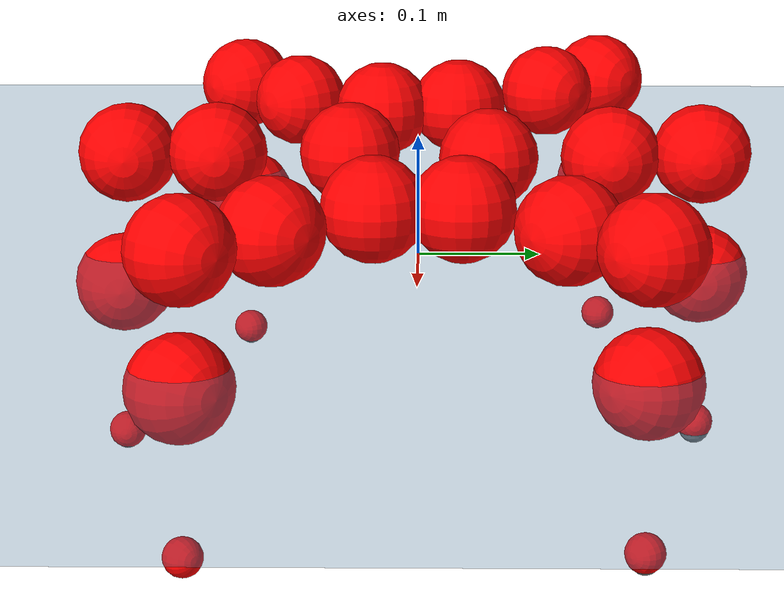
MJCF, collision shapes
<mujoco model="Golem">
  <compiler angle="radian" assetdir="assets" balanceinertia="true" inertiafromgeom="false"/>

  <option timestep="0.005" density="1.2" viscosity="2e-05"/>

  <size nkey="1"/>

  <visual>
    <quality shadowsize="8192"/>
    <map shadowclip="0.5"/>
  </visual>

  <default>
    <default class="/">
      <joint armature="0.01" damping="0.01" frictionloss="0.01"/>
      <geom contype="0" conaffinity="0" group="1" solref="-1000 -80"/>
      <site size="0.01 0.005 0.005" group="5"/>
      <general forcelimited="true" biastype="affine" gainprm="25" biasprm="0 -25 -0.5"/>
      <default class="visual">
        <geom type="mesh" group="2"/>
      </default>
      <default class="collision">
        <geom group="3"/>
      </default>
      <default class="foot">
        <geom size="0.01 0 0" condim="6" group="4" priority="1" solimp="0.015 1 0.01"/>
      </default>
      <default class="reward_collision_sphere">
        <geom group="5" rgba="1 0 0 1"/>
      </default>
    </default>
  </default>

  <asset>
    <texture type="skybox" colorspace="auto" name="//unnamed_texture_0" builtin="gradient" rgb1="0.95 0.95 0.95" rgb2="0.95 0.95 0.95" width="100" height="600"/>
    <texture type="2d" colorspace="auto" name="texplane" builtin="checker" rgb1="0.345 0.575 0.748" rgb2="0.345 0.575 0.748" markrgb="1 1 1" width="512" height="512"/>
    <material name="MatPlane" class="/" texture="texplane" texuniform="true" texrepeat="2 2" specular="0.9"/>
    <mesh name="body" class="/" file="body.stl" scale="0.001 0.001 0.001"/>
    <mesh name="coxa" class="/" file="coxa.stl" scale="0.001 0.001 0.001"/>
    <mesh name="femur" class="/" file="femur.stl" scale="0.001 0.001 0.001"/>
    <mesh name="tibia" class="/" file="tibia.stl" scale="0.001 0.001 0.001"/>
    <mesh name="tarsus" class="/" file="tarsus.stl" scale="0.001 0.001 0.001"/>
  </asset>

  <worldbody>
    <geom name="floor" class="/" size="100 100 0.125" type="plane" group="0" material="MatPlane"/>
    <light name="toplight_shadow" class="/" pos="0 0 5" dir="0.0990148 0.0990148 -0.990148" type="directional" ambient="0.04 0.04 0.04" diffuse="0.55 0.55 0.55" specular="0.12 0.12 0.12"/>
    <light name="toplight_fill" class="/" pos="0 0 5" dir="0.0990148 0.0990148 -0.990148" type="directional" castshadow="false" ambient="0.04 0.04 0.04" diffuse="0.3 0.3 0.3" specular="0.08 0.08 0.08"/>
    <body name="trunk" pos="-0.000511346 0.0017566 0.00577776" quat="1 2.19384e-05 3.979e-05 1.42733e-05">
      <inertial pos="0.000296485 7.16837e-05 -0.00557654" quat="0.999948 0.0101801 -0.0001648 -0.000522424" mass="3.98543" diaginertia="0.0287549 0.0016907 0.0229673"/>
      <joint name="//unnamed_joint_0" type="free"/>
      <geom name="//unnamed_geom_1" class="/" pos="0 0 0.0750412" quat="1 0 0 0" type="mesh" rgba="0.9 0.9 0.9 1" mesh="body"/>
      <site name="imu" class="/" pos="0.166598 -0.0102652 0.12734" size="0.0102827"/>
      <camera name="track" class="/" pos="0 -1.40284 0" quat="0.707107 0.707107 0 0" mode="trackcom"/>
      <camera name="ego_camera" class="/" pos="0.157412 0 0.117252" quat="-0.5 -0.5 0.5 0.5"/>
      <body name="coxa_RR" pos="-0.21211 -0.060564 0.0778275" quat="0.382871 0.000705925 -0.000445436 -0.923802">
        <inertial pos="0.000553143 0.00551615 0.00228396" quat="0.999933 -0.000341349 -0.0020878 0.0114162" mass="0.234557" diaginertia="0.0289349 0.00175338 0.0246421"/>
        <joint name="coxa_joint_RR" class="/" pos="0 0 0" axis="0.0310542 -0.0184537 -0.999347" range="-3.14895 3.16916" armature="0.0105054" damping="0.0164189" frictionloss="0.0114372"/>
        <geom name="//unnamed_geom_2" class="/" type="mesh" rgba="0.2 0.2 0.2 1" mesh="coxa"/>
        <geom name="//unnamed_geom_3" class="reward_collision_sphere" size="0.0411307" pos="-0.036326 0 0"/>
        <body name="femur_RR" pos="0.0689365 0.00306348 -0.0072594" quat="0.500224 -0.49888 0.500378 0.500517">
          <inertial pos="-0.00253461 -0.000508682 0.000180104" quat="0.999999 -0.00142525 -0.0007879 -0.000437195" mass="0.211476" diaginertia="0.0251791 0.00165728 0.0217627"/>
          <joint name="femur_joint_RR" class="/" pos="0 0 0" axis="-0.00122215 -0.00128822 -0.999998" range="-3.09616 3.23246" armature="0.0110385" damping="0.031709" frictionloss="0.0093123"/>
          <geom name="//unnamed_geom_4" class="/" type="mesh" rgba="0.9 0.9 0.9 1" mesh="femur"/>
          <geom name="//unnamed_geom_5" class="reward_collision_sphere" size="0.0411307"/>
          <body name="tibia_RR" pos="-0.00494246 -0.0774456 -0.00147921" quat="1.91865e-05 1 1.74078e-05 -2.00716e-05">
            <inertial pos="0.0038414 0.00111046 -0.000288382" quat="0.999928 0.00121889 -0.0114781 0.00313776" mass="0.217197" diaginertia="0.0261036 0.00160858 0.0208953"/>
            <joint name="tibia_joint_RR" class="/" pos="0 0 0" axis="-0.000100832 -5.22207e-05 1" range="-3.03284 3.11595" armature="0.0113149" damping="0.0147425" frictionloss="0.0113547"/>
            <geom name="//unnamed_geom_6" class="/" type="mesh" rgba="0.2 0.2 0.2 1" mesh="tibia"/>
            <geom name="//unnamed_geom_7" class="reward_collision_sphere" size="0.0411307"/>
            <body name="tarsus_RR" pos="0.107122 -0.00257391 -0.00212836" quat="1 0.000288149 -0.000871983 -0.00037904">
              <inertial pos="0.0771523 -0.00434505 0.00208097" quat="0.502908 0.497321 0.496185 0.503544" mass="0.22397" diaginertia="0.0266255 0.00174843 0.0226041"/>
              <joint name="tarsus_joint_RR" class="/" pos="0 0 0" axis="-0.00617206 -0.00284447 0.999977" stiffness="0.0314532" range="-3.08919 3.1335" armature="0.00903162" damping="0.0187924" frictionloss="0.00886524"/>
              <geom name="//unnamed_geom_8" class="/" type="mesh" rgba="0.9 0.9 0.9 1" mesh="tarsus"/>
              <geom name="foot_1" class="foot" size="0.0108004" pos="0.135617 0 0" quat="0 -0.707107 0 0.707107"/>
              <geom name="//unnamed_geom_10" class="reward_collision_sphere" size="0.0411307"/>
              <geom name="//unnamed_geom_11" class="reward_collision_sphere" size="0.015424" pos="0.130168 0 0"/>
              <site name="foot_1" class="foot" pos="0.135617 0 0" quat="0 -0.707107 0 0.707107" size="0.0102827"/>
            </body>
          </body>
        </body>
      </body>
      <body name="coxa_RM" pos="-6.58387e-05 -0.0942757 0.0808815" quat="0.708728 -0.000703628 -0.00198826 -0.705479">
        <inertial pos="0.00397025 -0.000397857 -0.000506923" quat="0.999934 -0.0100573 -0.00123697 0.00550052" mass="0.219847" diaginertia="0.0275068 0.00173338 0.0213315"/>
        <joint name="coxa_joint_RM" class="/" pos="0 0 0" axis="0.00185827 -0.00443567 -0.999988" range="-3.01123 3.14769" armature="0.00931526" damping="0.00826279" frictionloss="0.0101184"/>
        <geom name="//unnamed_geom_12" class="/" type="mesh" rgba="0.2 0.2 0.2 1" mesh="coxa"/>
        <geom name="//unnamed_geom_13" class="reward_collision_sphere" size="0.0411307" pos="-0.036326 0 0"/>
        <body name="femur_RM" pos="0.0726361 -0.00163338 -0.000548558" quat="0.499855 -0.501081 0.498321 0.500739">
          <inertial pos="0.000361541 -0.00118185 0.000963486" quat="0.999796 0.0197858 -0.00396904 -0.000183527" mass="0.207754" diaginertia="0.0250703 0.00168947 0.0208365"/>
          <joint name="femur_joint_RM" class="/" pos="0 0 0" axis="-0.00526625 0.00490269 -0.999974" stiffness="0.0272492" range="-3.15167 3.14461" armature="0.0114515" damping="0.0141976" frictionloss="0.00971225"/>
          <geom name="//unnamed_geom_14" class="/" type="mesh" rgba="0.9 0.9 0.9 1" mesh="femur"/>
          <geom name="//unnamed_geom_15" class="reward_collision_sphere" size="0.0411307"/>
          <body name="tibia_RM" pos="0.00194406 -0.0742786 -0.00443328" quat="-0.000548222 0.999999 -0.00110751 0.000392615">
            <inertial pos="-0.00217965 -0.00705478 0.00160735" quat="0.999936 -0.00799768 0.00623576 0.00505199" mass="0.203097" diaginertia="0.0244975 0.00157217 0.0205195"/>
            <joint name="tibia_joint_RM" class="/" pos="0 0 0" axis="0.000641435 -0.00316607 0.999995" range="-3.17472 3.28432" armature="0.010224" damping="0.0306684" frictionloss="0.011083"/>
            <geom name="//unnamed_geom_16" class="/" type="mesh" rgba="0.2 0.2 0.2 1" mesh="tibia"/>
            <geom name="//unnamed_geom_17" class="reward_collision_sphere" size="0.0411307"/>
            <body name="tarsus_RM" pos="0.110835 0.00471254 2.59077e-05" quat="0.999999 -0.000854818 -0.000210019 0.000587313">
              <inertial pos="0.0737186 -0.00590733 0.00165235" quat="0.499914 0.500197 0.501685 0.498198" mass="0.240821" diaginertia="0.026798 0.00179036 0.0226411"/>
              <joint name="tarsus_joint_RM" class="/" pos="0 0 0" axis="0.00111606 0.00100093 0.999999" range="-3.14974 3.09291" armature="0.00998812" damping="0.00776925" frictionloss="0.0102385"/>
              <geom name="//unnamed_geom_18" class="/" type="mesh" rgba="0.9 0.9 0.9 1" mesh="tarsus"/>
              <geom name="foot_2" class="foot" size="0.0107441" pos="0.135617 0 0" quat="0 -0.707107 0 0.707107"/>
              <geom name="//unnamed_geom_20" class="reward_collision_sphere" size="0.0411307"/>
              <geom name="//unnamed_geom_21" class="reward_collision_sphere" size="0.015424" pos="0.130168 0 0"/>
              <site name="foot_2" class="foot" pos="0.135617 0 0" quat="0 -0.707107 0 0.707107" size="0.0102827"/>
            </body>
          </body>
        </body>
      </body>
      <body name="coxa_RF" pos="0.214643 -0.0596309 0.0800848" quat="0.92388 -0.000433166 0.000429219 -0.382681">
        <inertial pos="0.0044553 0.00231817 -0.00315667" quat="0.999997 6.24427e-05 -0.00108437 0.0021705" mass="0.202163" diaginertia="0.0240426 0.00168595 0.0205334"/>
        <joint name="coxa_joint_RF" class="/" pos="0 0 0" axis="0.000366367 -0.0044578 -0.99999" range="-3.12503 3.13194" armature="0.0119048" damping="0" frictionloss="0.0097573"/>
        <geom name="//unnamed_geom_22" class="/" type="mesh" rgba="0.2 0.2 0.2 1" mesh="coxa"/>
        <geom name="//unnamed_geom_23" class="reward_collision_sphere" size="0.0411307" pos="-0.036326 0 0"/>
        <body name="femur_RF" pos="0.0665532 -0.000229064 0.00153095" quat="0.498739 -0.501494 0.500302 0.499461">
          <inertial pos="-0.0024233 -0.000631166 0.00214582" quat="0.999936 0.00471998 0.00989758 -0.00280459" mass="0.246417" diaginertia="0.0263526 0.00180075 0.0242047"/>
          <joint name="femur_joint_RF" class="/" pos="0 0 0" axis="0.00717604 0.00250651 -0.999971" stiffness="0.0305237" range="-3.11721 3.24255" armature="0.0136043" damping="0.0158185" frictionloss="0.0135813"/>
          <geom name="//unnamed_geom_24" class="/" type="mesh" rgba="0.9 0.9 0.9 1" mesh="femur"/>
          <geom name="//unnamed_geom_25" class="reward_collision_sphere" size="0.0411307"/>
          <body name="tibia_RF" pos="0.000165438 -0.0812775 -0.00585172" quat="2.20811e-06 1 6.14804e-08 -1.58316e-05">
            <inertial pos="0.00477545 -0.00192723 0.000468826" quat="0.99997 0.00100172 0.00312932 0.00705563" mass="0.22638" diaginertia="0.0273427 0.00171754 0.022602"/>
            <joint name="tibia_joint_RF" class="/" pos="0 0 0" axis="0.000641422 -0.000485222 1" range="-3.1615 3.16713" armature="0.0108243" damping="0.0258944" frictionloss="0.00995617"/>
            <geom name="//unnamed_geom_26" class="/" type="mesh" rgba="0.2 0.2 0.2 1" mesh="tibia"/>
            <geom name="//unnamed_geom_27" class="reward_collision_sphere" size="0.0411307"/>
            <body name="tarsus_RF" pos="0.104365 -0.00122643 0.00448858" quat="1 -0.000522949 -0.000414776 0.000741165">
              <inertial pos="0.0767903 0.000611633 -0.00119041" quat="0.475986 0.517559 0.515559 0.489662" mass="0.223239" diaginertia="0.0259292 0.00165591 0.0237569"/>
              <joint name="tarsus_joint_RF" class="/" pos="0 0 0" axis="-0.000363971 -0.00118579 0.999999" stiffness="0.00161343" range="-3.18099 3.12117" armature="0.0130839" damping="0.00316873" frictionloss="0.0122275"/>
              <geom name="//unnamed_geom_28" class="/" type="mesh" rgba="0.9 0.9 0.9 1" mesh="tarsus"/>
              <geom name="foot_3" class="foot" size="0.010084" pos="0.135617 0 0" quat="0 -0.707107 0 0.707107"/>
              <geom name="//unnamed_geom_30" class="reward_collision_sphere" size="0.0411307"/>
              <geom name="//unnamed_geom_31" class="reward_collision_sphere" size="0.015424" pos="0.130168 0 0"/>
              <site name="foot_3" class="foot" pos="0.135617 0 0" quat="0 -0.707107 0 0.707107" size="0.0102827"/>
            </body>
          </body>
        </body>
      </body>
      <body name="coxa_LR" pos="-0.218406 0.0587009 0.0793941" quat="0.382982 0.000859086 -0.000377005 0.923755">
        <inertial pos="0.00141522 -0.000301689 -0.000991326" quat="0.999619 0.00706491 0.0265412 -0.00263712" mass="0.209724" diaginertia="0.026299 0.00160516 0.0221004"/>
        <joint name="coxa_joint_LR" class="/" pos="0 0 0" axis="-0.00223099 -0.00501689 -0.999985" range="-3.14704 3.14679" armature="0.00865323" damping="0.0208302" frictionloss="0.010983"/>
        <geom name="//unnamed_geom_32" class="/" type="mesh" rgba="0.2 0.2 0.2 1" mesh="coxa"/>
        <geom name="//unnamed_geom_33" class="reward_collision_sphere" size="0.0411307" pos="-0.036326 0 0"/>
        <body name="femur_LR" pos="0.0774583 -0.000988523 -0.00287137" quat="0.499388 -0.499575 0.500635 0.500402">
          <inertial pos="0.00370069 0.00521097 -0.00516631" quat="0.999998 -7.47004e-06 0.00137269 0.00119647" mass="0.203448" diaginertia="0.025988 0.00160372 0.0217024"/>
          <joint name="femur_joint_LR" class="/" pos="0 0 0" axis="0.0213224 0.0205813 0.999561" range="-3.10196 3.18934" armature="0.00649938" damping="0.0187014" frictionloss="0.0121289"/>
          <geom name="//unnamed_geom_34" class="/" type="mesh" rgba="0.9 0.9 0.9 1" mesh="femur"/>
          <geom name="//unnamed_geom_35" class="reward_collision_sphere" size="0.0411307"/>
          <body name="tibia_LR" pos="-0.000785809 -0.0736398 0.00220886" quat="-0.000159823 0.999999 0.00105586 0.0002603">
            <inertial pos="-0.000195085 0.00524372 -0.00116721" quat="1 -1.99348e-05 -4.68781e-05 8.18608e-05" mass="0.23007" diaginertia="0.0269616 0.0017331 0.0243607"/>
            <joint name="tibia_joint_LR" class="/" pos="0 0 0" axis="-0.0237636 0.00130155 -0.999717" stiffness="0.0231594" range="-3.15011 3.22759" armature="0.0102779" damping="0.0278251" frictionloss="0.00935571"/>
            <geom name="//unnamed_geom_36" class="/" type="mesh" rgba="0.2 0.2 0.2 1" mesh="tibia"/>
            <geom name="//unnamed_geom_37" class="reward_collision_sphere" size="0.0411307"/>
            <body name="tarsus_LR" pos="0.0997253 0.00488256 0.000998423" quat="1 -0.000505112 0.000374476 0.000458499">
              <inertial pos="0.0711986 0.000939978 0.00267308" quat="0.497701 0.498544 0.506209 0.497493" mass="0.21929" diaginertia="0.0261313 0.00166998 0.0226076"/>
              <joint name="tarsus_joint_LR" class="/" pos="0 0 0" axis="-0.0113262 0.0165971 -0.999798" stiffness="0.00624749" range="-3.08707 3.10285" armature="0.0121841" damping="0.0349822" frictionloss="0.00960603"/>
              <geom name="//unnamed_geom_38" class="/" type="mesh" rgba="0.9 0.9 0.9 1" mesh="tarsus"/>
              <geom name="foot_4" class="foot" size="0.0102733" pos="0.135617 0 0" quat="0.707107 0 -0.707107 0"/>
              <geom name="//unnamed_geom_40" class="reward_collision_sphere" size="0.0411307"/>
              <geom name="//unnamed_geom_41" class="reward_collision_sphere" size="0.015424" pos="0.130168 0 0"/>
              <site name="foot_4" class="foot" pos="0.135617 0 0" quat="0.707107 0 -0.707107 0" size="0.0102827"/>
            </body>
          </body>
        </body>
      </body>
      <body name="coxa_LM" pos="-0.00575711 0.0927907 0.074715" quat="0.70722 -0.000192149 0.000254929 0.706994">
        <inertial pos="-0.000983783 0.00152434 0.00144196" quat="1 0.000211205 -0.000493389 -2.31893e-05" mass="0.222105" diaginertia="0.0243839 0.00164802 0.0221849"/>
        <joint name="coxa_joint_LM" class="/" pos="0 0 0" axis="-0.0185173 0.0140549 -0.99973" range="-3.12785 3.01232" armature="0.0105112" damping="0.018665" frictionloss="0.0102323"/>
        <geom name="//unnamed_geom_42" class="/" type="mesh" rgba="0.2 0.2 0.2 1" mesh="coxa"/>
        <geom name="//unnamed_geom_43" class="reward_collision_sphere" size="0.0411307" pos="-0.036326 0 0"/>
        <body name="femur_LM" pos="0.064136 0.00239378 0.00151653" quat="0.501239 -0.500685 0.499012 0.49906">
          <inertial pos="-0.00231738 -0.00264709 0.0017309" quat="0.999996 -0.000713311 0.00195491 0.00203877" mass="0.195482" diaginertia="0.0243577 0.0016277 0.0205643"/>
          <joint name="femur_joint_LM" class="/" pos="0 0 0" axis="-0.0127988 0.00322706 0.999913" range="-3.04018 3.23626" armature="0.0109826" damping="0" frictionloss="0.00935946"/>
          <geom name="//unnamed_geom_44" class="/" type="mesh" rgba="0.9 0.9 0.9 1" mesh="femur"/>
          <geom name="//unnamed_geom_45" class="reward_collision_sphere" size="0.0411307"/>
          <body name="tibia_LM" pos="-0.00116644 -0.0753696 0.00196708" quat="0.000333625 1 6.02954e-05 -0.000899532">
            <inertial pos="-0.00171608 -0.000168448 0.00101562" quat="0.999982 0.00172216 0.00574943 0.000819178" mass="0.21768" diaginertia="0.0256919 0.00181433 0.0217305"/>
            <joint name="tibia_joint_LM" class="/" pos="0 0 0" axis="0.0014617 0.00812553 -0.999966" stiffness="0.0349178" range="-3.16352 3.14664" armature="0.012714" damping="0.0312566" frictionloss="0.00982028"/>
            <geom name="//unnamed_geom_46" class="/" type="mesh" rgba="0.2 0.2 0.2 1" mesh="tibia"/>
            <geom name="//unnamed_geom_47" class="reward_collision_sphere" size="0.0411307"/>
            <body name="tarsus_LM" pos="0.101879 -0.000737967 0.00134894" quat="1 0.000121163 -4.40686e-05 0.000116439">
              <inertial pos="0.0720129 -0.000241571 -0.00314292" quat="0.499632 0.500046 0.500378 0.499943" mass="0.215571" diaginertia="0.0279431 0.00162637 0.0221509"/>
              <joint name="tarsus_joint_LM" class="/" pos="0 0 0" axis="-0.0125643 -0.0104844 -0.999866" stiffness="0.0116588" range="-3.17277 3.16888" armature="0.00923812" damping="0.000822854" frictionloss="0.0102245"/>
              <geom name="//unnamed_geom_48" class="/" type="mesh" rgba="0.9 0.9 0.9 1" mesh="tarsus"/>
              <geom name="foot_5" class="foot" size="0.0129483" pos="0.135617 0 0" quat="0.707107 0 -0.707107 0"/>
              <geom name="//unnamed_geom_50" class="reward_collision_sphere" size="0.0411307"/>
              <geom name="//unnamed_geom_51" class="reward_collision_sphere" size="0.015424" pos="0.130168 0 0"/>
              <site name="foot_5" class="foot" pos="0.135617 0 0" quat="0.707107 0 -0.707107 0" size="0.0102827"/>
            </body>
          </body>
        </body>
      </body>
      <body name="coxa_LF" pos="0.209936 0.0596665 0.0789334" quat="0.922982 0.000294067 0.00111551 0.38484">
        <inertial pos="0.000779335 0.00109898 -0.00290798" quat="0.999953 -0.0092062 0.00248678 -0.0018483" mass="0.213213" diaginertia="0.0253563 0.00183409 0.0221112"/>
        <joint name="coxa_joint_LF" class="/" pos="0 0 0" axis="0.0155129 0.00779237 -0.999849" range="-3.09097 3.18576" armature="0.0113364" damping="0.0245069" frictionloss="0.0120062"/>
        <geom name="//unnamed_geom_52" class="/" type="mesh" rgba="0.2 0.2 0.2 1" mesh="coxa"/>
        <geom name="//unnamed_geom_53" class="reward_collision_sphere" size="0.0411307" pos="-0.036326 0 0"/>
        <body name="femur_LF" pos="0.0683847 0.00384057 0.00204188" quat="0.499709 -0.499914 0.500146 0.50023">
          <inertial pos="-0.000817718 0.000975002 -0.00498441" quat="0.99996 -0.00637234 -0.00596367 -0.00177562" mass="0.198361" diaginertia="0.0270559 0.00166187 0.022055"/>
          <joint name="femur_joint_LF" class="/" pos="0 0 0" axis="-0.00683949 -0.0105766 0.999921" range="-3.0921 3.14861" armature="0.0102159" damping="0.00938221" frictionloss="0.00814494"/>
          <geom name="//unnamed_geom_54" class="/" type="mesh" rgba="0.9 0.9 0.9 1" mesh="femur"/>
          <geom name="//unnamed_geom_55" class="reward_collision_sphere" size="0.0411307"/>
          <body name="tibia_LF" pos="-0.00237117 -0.0836467 -0.00353803" quat="-0.00171165 0.999996 -0.0018743 0.00124013">
            <inertial pos="0.00240172 -0.00352957 0.00315374" quat="0.999639 -0.00345751 0.00156634 0.026599" mass="0.201978" diaginertia="0.0253097 0.00167901 0.0220422"/>
            <joint name="tibia_joint_LF" class="/" pos="0 0 0" axis="-0.00137377 -0.00283519 -0.999995" stiffness="0.0186974" range="-3.28052 3.14831" armature="0.00911211" damping="0" frictionloss="0.0101507"/>
            <geom name="//unnamed_geom_56" class="/" type="mesh" rgba="0.2 0.2 0.2 1" mesh="tibia"/>
            <geom name="//unnamed_geom_57" class="reward_collision_sphere" size="0.0411307"/>
            <body name="tarsus_LF" pos="0.100157 -0.00316402 -0.000923868" quat="1 -7.21613e-06 -1.42767e-06 -2.34132e-06">
              <inertial pos="0.0785651 -0.00079468 0.000161657" quat="0.498522 0.500777 0.500581 0.500117" mass="0.225287" diaginertia="0.0268037 0.00176405 0.0211662"/>
              <joint name="tarsus_joint_LF" class="/" pos="0 0 0" axis="0.0122092 0.0158733 -0.999799" stiffness="0.0194512" range="-3.12576 3.20525" armature="0.00785681" damping="0.0185547" frictionloss="0.0068627"/>
              <geom name="//unnamed_geom_58" class="/" type="mesh" rgba="0.9 0.9 0.9 1" mesh="tarsus"/>
              <geom name="foot_6" class="foot" size="0.0111807" pos="0.135617 0 0" quat="0.707107 0 -0.707107 0"/>
              <geom name="//unnamed_geom_60" class="reward_collision_sphere" size="0.0411307"/>
              <geom name="//unnamed_geom_61" class="reward_collision_sphere" size="0.015424" pos="0.130168 0 0"/>
              <site name="foot_6" class="foot" pos="0.135617 0 0" quat="0.707107 0 -0.707107 0" size="0.0102827"/>
            </body>
          </body>
        </body>
      </body>
    </body>
  </worldbody>

  <contact>
    <pair class="/" geom1="floor" geom2="foot_1" name="//unnamed_contact_0"/>
    <pair class="/" geom1="floor" geom2="foot_2" name="//unnamed_contact_1"/>
    <pair class="/" geom1="floor" geom2="foot_3" name="//unnamed_contact_2"/>
    <pair class="/" geom1="floor" geom2="foot_4" name="//unnamed_contact_3"/>
    <pair class="/" geom1="floor" geom2="foot_5" name="//unnamed_contact_4"/>
    <pair class="/" geom1="floor" geom2="foot_6" name="//unnamed_contact_5"/>
  </contact>

  <actuator>
    <general name="coxa_joint_RR" class="/" joint="coxa_joint_RR" forcerange="-7.20089 7.20089" gainprm="25.788" biasprm="0 -25.788 -0.529857"/>
    <general name="femur_joint_RR" class="/" joint="femur_joint_RR" forcerange="-6.85688 6.85688" gainprm="25.788" biasprm="0 -25.788 -0.529857"/>
    <general name="tibia_joint_RR" class="/" joint="tibia_joint_RR" forcerange="-8.25502 8.25502" gainprm="25.788" biasprm="0 -25.788 -0.529857"/>
    <general name="tarsus_joint_RR" class="/" joint="tarsus_joint_RR" forcerange="-8.44558 8.44558" gainprm="25.788" biasprm="0 -25.788 -0.529857"/>
    <general name="coxa_joint_RM" class="/" joint="coxa_joint_RM" forcerange="-8.90162 8.90162" gainprm="25.788" biasprm="0 -25.788 -0.529857"/>
    <general name="femur_joint_RM" class="/" joint="femur_joint_RM" forcerange="-8.17358 8.17358" gainprm="25.788" biasprm="0 -25.788 -0.529857"/>
    <general name="tibia_joint_RM" class="/" joint="tibia_joint_RM" forcerange="-7.47162 7.47162" gainprm="25.788" biasprm="0 -25.788 -0.529857"/>
    <general name="tarsus_joint_RM" class="/" joint="tarsus_joint_RM" forcerange="-7.09807 7.09807" gainprm="25.788" biasprm="0 -25.788 -0.529857"/>
    <general name="coxa_joint_RF" class="/" joint="coxa_joint_RF" forcerange="-8.08537 8.08537" gainprm="25.788" biasprm="0 -25.788 -0.529857"/>
    <general name="femur_joint_RF" class="/" joint="femur_joint_RF" forcerange="-5.56204 5.56204" gainprm="25.788" biasprm="0 -25.788 -0.529857"/>
    <general name="tibia_joint_RF" class="/" joint="tibia_joint_RF" forcerange="-6.0267 6.0267" gainprm="25.788" biasprm="0 -25.788 -0.529857"/>
    <general name="tarsus_joint_RF" class="/" joint="tarsus_joint_RF" forcerange="-6.23568 6.23568" gainprm="25.788" biasprm="0 -25.788 -0.529857"/>
    <general name="coxa_joint_LR" class="/" joint="coxa_joint_LR" forcerange="-7.31817 7.31817" gainprm="25.788" biasprm="0 -25.788 -0.529857"/>
    <general name="femur_joint_LR" class="/" joint="femur_joint_LR" forcerange="-7.5841 7.5841" gainprm="25.788" biasprm="0 -25.788 -0.529857"/>
    <general name="tibia_joint_LR" class="/" joint="tibia_joint_LR" forcerange="-5.67401 5.67401" gainprm="25.788" biasprm="0 -25.788 -0.529857"/>
    <general name="tarsus_joint_LR" class="/" joint="tarsus_joint_LR" forcerange="-6.0268 6.0268" gainprm="25.788" biasprm="0 -25.788 -0.529857"/>
    <general name="coxa_joint_LM" class="/" joint="coxa_joint_LM" forcerange="-7.94083 7.94083" gainprm="25.788" biasprm="0 -25.788 -0.529857"/>
    <general name="femur_joint_LM" class="/" joint="femur_joint_LM" forcerange="-6.89031 6.89031" gainprm="25.788" biasprm="0 -25.788 -0.529857"/>
    <general name="tibia_joint_LM" class="/" joint="tibia_joint_LM" forcerange="-7.57388 7.57388" gainprm="25.788" biasprm="0 -25.788 -0.529857"/>
    <general name="tarsus_joint_LM" class="/" joint="tarsus_joint_LM" forcerange="-7.20998 7.20998" gainprm="25.788" biasprm="0 -25.788 -0.529857"/>
    <general name="coxa_joint_LF" class="/" joint="coxa_joint_LF" forcerange="-7.71505 7.71505" gainprm="25.788" biasprm="0 -25.788 -0.529857"/>
    <general name="femur_joint_LF" class="/" joint="femur_joint_LF" forcerange="-6.31342 6.31342" gainprm="25.788" biasprm="0 -25.788 -0.529857"/>
    <general name="tibia_joint_LF" class="/" joint="tibia_joint_LF" forcerange="-6.50692 6.50692" gainprm="25.788" biasprm="0 -25.788 -0.529857"/>
    <general name="tarsus_joint_LF" class="/" joint="tarsus_joint_LF" forcerange="-8.09758 8.09758" gainprm="25.788" biasprm="0 -25.788 -0.529857"/>
  </actuator>

  <sensor>
    <gyro site="imu" name="imu_angular_velocity"/>
    <velocimeter site="imu" name="imu_linear_velocity"/>
    <framelinvel objtype="site" objname="foot_1" name="foot_1_global_linear_velocity"/>
    <framelinvel objtype="site" objname="foot_2" name="foot_2_global_linear_velocity"/>
    <framelinvel objtype="site" objname="foot_3" name="foot_3_global_linear_velocity"/>
    <framelinvel objtype="site" objname="foot_4" name="foot_4_global_linear_velocity"/>
    <framelinvel objtype="site" objname="foot_5" name="foot_5_global_linear_velocity"/>
    <framelinvel objtype="site" objname="foot_6" name="foot_6_global_linear_velocity"/>
  </sensor>

  <keyframe>
    <key name="home" qpos="0 0 0.1457 1 0 0 0 0 0 0 0 0 0 0 0 0 0 0 0 0 0 0 0 0 0 0 0 0 0 0 0"/>
  </keyframe>
</mujoco>
